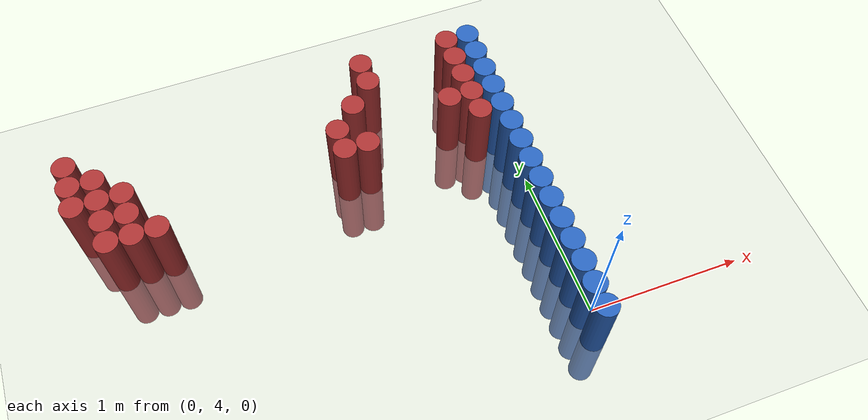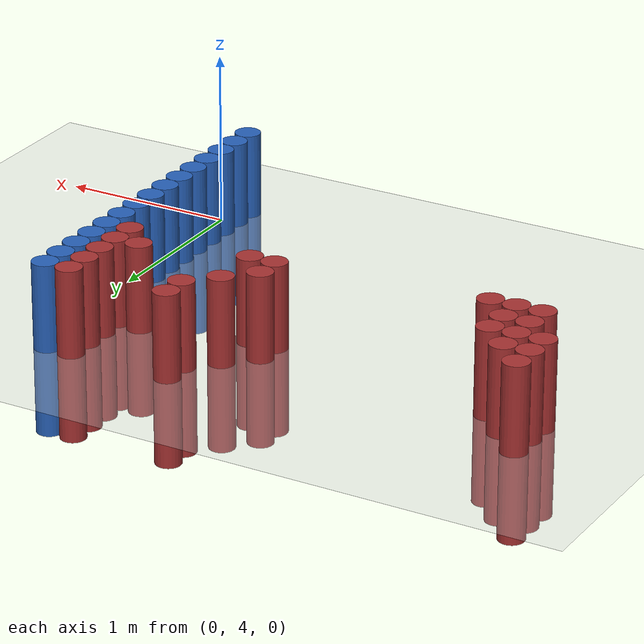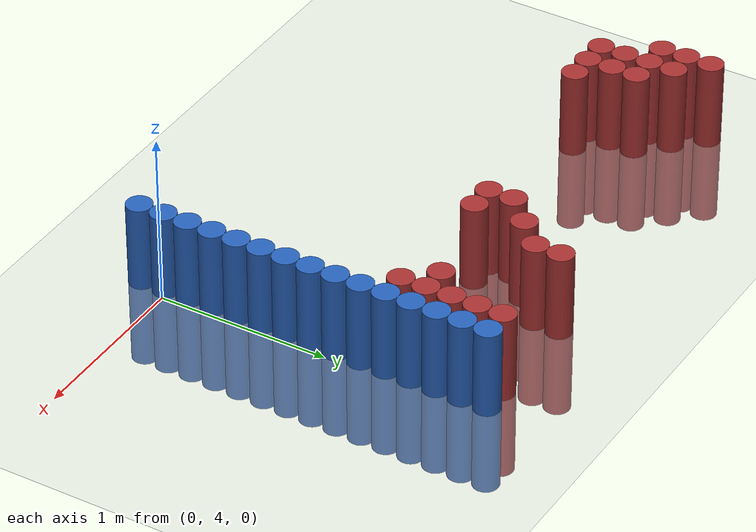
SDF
<sdf version="1.6">
 <world name="default">
  <model name="ground_plane">
   <static>1</static>
   <link name="link">
    <collision name="collision">
     <geometry><plane><normal>0 0 1</normal><size>100 100</size></plane></geometry>
     <surface><friction><ode><mu>100</mu><mu2>50</mu2></ode></friction></surface>
    </collision>
    <visual name="visual">
     <cast_shadows>0</cast_shadows>
     <geometry><plane><normal>0 0 1</normal><size>100 100</size></plane></geometry>
     <material>
      <script><uri>file://media/materials/scripts/gazebo.material</uri><name>Gazebo/Grey</name></script>
     </material>
    </visual>
   </link>
  </model>
  <model name="unit_cylinder_78">
   <static>1</static>
   <pose>-0.075000 3.825000 0.000000 0.000000 0.000000 0.000000</pose>
   <link name="link">
    <inertial>
     <mass>1</mass>
     <inertia><ixx>0.145833</ixx><ixy>0</ixy><ixz>0</ixz><iyy>0.145833</iyy><iyz>0</iyz><izz>0.125</izz></inertia>
    </inertial>
    <collision name="collision">
     <geometry><cylinder><radius>0.075000</radius><length>1</length></cylinder></geometry>
    </collision>
    <visual name="visual">
     <geometry><cylinder><radius>0.075000</radius><length>1</length></cylinder></geometry>
     <material>
      <ambient>0.152000 0.379000 0.720000 1</ambient>
      <diffuse>0.152000 0.379000 0.720000 1</diffuse>
     </material>
     <material>
      <script><name>Gazebo/Grey</name><uri>file://media/materials/scripts/gazebo.material</uri></script>
     </material>
    </visual>
    <sensor name="sensor_contact" type="contact"><contact><collision>collision</collision></contact></sensor>
   </link>
   <plugin filename="gz-sim-touchplugin-system" name="gz::sim::systems::TouchPlugin">
    <target>robot</target>
    <namespace>robot</namespace>
    <time>0.001</time>
    <enabled>true</enabled>
   </plugin>
  </model>
  <model name="unit_cylinder_80">
   <static>1</static>
   <pose>-0.075000 3.975000 0.000000 0.000000 0.000000 0.000000</pose>
   <link name="link">
    <inertial>
     <mass>1</mass>
     <inertia><ixx>0.145833</ixx><ixy>0</ixy><ixz>0</ixz><iyy>0.145833</iyy><iyz>0</iyz><izz>0.125</izz></inertia>
    </inertial>
    <collision name="collision">
     <geometry><cylinder><radius>0.075000</radius><length>1</length></cylinder></geometry>
    </collision>
    <visual name="visual">
     <geometry><cylinder><radius>0.075000</radius><length>1</length></cylinder></geometry>
     <material>
      <ambient>0.152000 0.379000 0.720000 1</ambient>
      <diffuse>0.152000 0.379000 0.720000 1</diffuse>
     </material>
     <material>
      <script><name>Gazebo/Grey</name><uri>file://media/materials/scripts/gazebo.material</uri></script>
     </material>
    </visual>
    <sensor name="sensor_contact" type="contact"><contact><collision>collision</collision></contact></sensor>
   </link>
   <plugin filename="gz-sim-touchplugin-system" name="gz::sim::systems::TouchPlugin">
    <target>robot</target>
    <namespace>robot</namespace>
    <time>0.001</time>
    <enabled>true</enabled>
   </plugin>
  </model>
  <model name="unit_cylinder_82">
   <static>1</static>
   <pose>-0.075000 4.125000 0.000000 0.000000 0.000000 0.000000</pose>
   <link name="link">
    <inertial>
     <mass>1</mass>
     <inertia><ixx>0.145833</ixx><ixy>0</ixy><ixz>0</ixz><iyy>0.145833</iyy><iyz>0</iyz><izz>0.125</izz></inertia>
    </inertial>
    <collision name="collision">
     <geometry><cylinder><radius>0.075000</radius><length>1</length></cylinder></geometry>
    </collision>
    <visual name="visual">
     <geometry><cylinder><radius>0.075000</radius><length>1</length></cylinder></geometry>
     <material>
      <ambient>0.152000 0.379000 0.720000 1</ambient>
      <diffuse>0.152000 0.379000 0.720000 1</diffuse>
     </material>
     <material>
      <script><name>Gazebo/Grey</name><uri>file://media/materials/scripts/gazebo.material</uri></script>
     </material>
    </visual>
    <sensor name="sensor_contact" type="contact"><contact><collision>collision</collision></contact></sensor>
   </link>
   <plugin filename="gz-sim-touchplugin-system" name="gz::sim::systems::TouchPlugin">
    <target>robot</target>
    <namespace>robot</namespace>
    <time>0.001</time>
    <enabled>true</enabled>
   </plugin>
  </model>
  <model name="unit_cylinder_84">
   <static>1</static>
   <pose>-0.075000 4.275000 0.000000 0.000000 0.000000 0.000000</pose>
   <link name="link">
    <inertial>
     <mass>1</mass>
     <inertia><ixx>0.145833</ixx><ixy>0</ixy><ixz>0</ixz><iyy>0.145833</iyy><iyz>0</iyz><izz>0.125</izz></inertia>
    </inertial>
    <collision name="collision">
     <geometry><cylinder><radius>0.075000</radius><length>1</length></cylinder></geometry>
    </collision>
    <visual name="visual">
     <geometry><cylinder><radius>0.075000</radius><length>1</length></cylinder></geometry>
     <material>
      <ambient>0.152000 0.379000 0.720000 1</ambient>
      <diffuse>0.152000 0.379000 0.720000 1</diffuse>
     </material>
     <material>
      <script><name>Gazebo/Grey</name><uri>file://media/materials/scripts/gazebo.material</uri></script>
     </material>
    </visual>
    <sensor name="sensor_contact" type="contact"><contact><collision>collision</collision></contact></sensor>
   </link>
   <plugin filename="gz-sim-touchplugin-system" name="gz::sim::systems::TouchPlugin">
    <target>robot</target>
    <namespace>robot</namespace>
    <time>0.001</time>
    <enabled>true</enabled>
   </plugin>
  </model>
  <model name="unit_cylinder_86">
   <static>1</static>
   <pose>-0.075000 4.425000 0.000000 0.000000 0.000000 0.000000</pose>
   <link name="link">
    <inertial>
     <mass>1</mass>
     <inertia><ixx>0.145833</ixx><ixy>0</ixy><ixz>0</ixz><iyy>0.145833</iyy><iyz>0</iyz><izz>0.125</izz></inertia>
    </inertial>
    <collision name="collision">
     <geometry><cylinder><radius>0.075000</radius><length>1</length></cylinder></geometry>
    </collision>
    <visual name="visual">
     <geometry><cylinder><radius>0.075000</radius><length>1</length></cylinder></geometry>
     <material>
      <ambient>0.152000 0.379000 0.720000 1</ambient>
      <diffuse>0.152000 0.379000 0.720000 1</diffuse>
     </material>
     <material>
      <script><name>Gazebo/Grey</name><uri>file://media/materials/scripts/gazebo.material</uri></script>
     </material>
    </visual>
    <sensor name="sensor_contact" type="contact"><contact><collision>collision</collision></contact></sensor>
   </link>
   <plugin filename="gz-sim-touchplugin-system" name="gz::sim::systems::TouchPlugin">
    <target>robot</target>
    <namespace>robot</namespace>
    <time>0.001</time>
    <enabled>true</enabled>
   </plugin>
  </model>
  <model name="unit_cylinder_88">
   <static>1</static>
   <pose>-0.075000 4.575000 0.000000 0.000000 0.000000 0.000000</pose>
   <link name="link">
    <inertial>
     <mass>1</mass>
     <inertia><ixx>0.145833</ixx><ixy>0</ixy><ixz>0</ixz><iyy>0.145833</iyy><iyz>0</iyz><izz>0.125</izz></inertia>
    </inertial>
    <collision name="collision">
     <geometry><cylinder><radius>0.075000</radius><length>1</length></cylinder></geometry>
    </collision>
    <visual name="visual">
     <geometry><cylinder><radius>0.075000</radius><length>1</length></cylinder></geometry>
     <material>
      <ambient>0.152000 0.379000 0.720000 1</ambient>
      <diffuse>0.152000 0.379000 0.720000 1</diffuse>
     </material>
     <material>
      <script><name>Gazebo/Grey</name><uri>file://media/materials/scripts/gazebo.material</uri></script>
     </material>
    </visual>
    <sensor name="sensor_contact" type="contact"><contact><collision>collision</collision></contact></sensor>
   </link>
   <plugin filename="gz-sim-touchplugin-system" name="gz::sim::systems::TouchPlugin">
    <target>robot</target>
    <namespace>robot</namespace>
    <time>0.001</time>
    <enabled>true</enabled>
   </plugin>
  </model>
  <model name="unit_cylinder_90">
   <static>1</static>
   <pose>-0.075000 4.725000 0.000000 0.000000 0.000000 0.000000</pose>
   <link name="link">
    <inertial>
     <mass>1</mass>
     <inertia><ixx>0.145833</ixx><ixy>0</ixy><ixz>0</ixz><iyy>0.145833</iyy><iyz>0</iyz><izz>0.125</izz></inertia>
    </inertial>
    <collision name="collision">
     <geometry><cylinder><radius>0.075000</radius><length>1</length></cylinder></geometry>
    </collision>
    <visual name="visual">
     <geometry><cylinder><radius>0.075000</radius><length>1</length></cylinder></geometry>
     <material>
      <ambient>0.152000 0.379000 0.720000 1</ambient>
      <diffuse>0.152000 0.379000 0.720000 1</diffuse>
     </material>
     <material>
      <script><name>Gazebo/Grey</name><uri>file://media/materials/scripts/gazebo.material</uri></script>
     </material>
    </visual>
    <sensor name="sensor_contact" type="contact"><contact><collision>collision</collision></contact></sensor>
   </link>
   <plugin filename="gz-sim-touchplugin-system" name="gz::sim::systems::TouchPlugin">
    <target>robot</target>
    <namespace>robot</namespace>
    <time>0.001</time>
    <enabled>true</enabled>
   </plugin>
  </model>
  <model name="unit_cylinder_92">
   <static>1</static>
   <pose>-0.075000 4.875000 0.000000 0.000000 0.000000 0.000000</pose>
   <link name="link">
    <inertial>
     <mass>1</mass>
     <inertia><ixx>0.145833</ixx><ixy>0</ixy><ixz>0</ixz><iyy>0.145833</iyy><iyz>0</iyz><izz>0.125</izz></inertia>
    </inertial>
    <collision name="collision">
     <geometry><cylinder><radius>0.075000</radius><length>1</length></cylinder></geometry>
    </collision>
    <visual name="visual">
     <geometry><cylinder><radius>0.075000</radius><length>1</length></cylinder></geometry>
     <material>
      <ambient>0.152000 0.379000 0.720000 1</ambient>
      <diffuse>0.152000 0.379000 0.720000 1</diffuse>
     </material>
     <material>
      <script><name>Gazebo/Grey</name><uri>file://media/materials/scripts/gazebo.material</uri></script>
     </material>
    </visual>
    <sensor name="sensor_contact" type="contact"><contact><collision>collision</collision></contact></sensor>
   </link>
   <plugin filename="gz-sim-touchplugin-system" name="gz::sim::systems::TouchPlugin">
    <target>robot</target>
    <namespace>robot</namespace>
    <time>0.001</time>
    <enabled>true</enabled>
   </plugin>
  </model>
  <model name="unit_cylinder_94">
   <static>1</static>
   <pose>-0.075000 5.025000 0.000000 0.000000 0.000000 0.000000</pose>
   <link name="link">
    <inertial>
     <mass>1</mass>
     <inertia><ixx>0.145833</ixx><ixy>0</ixy><ixz>0</ixz><iyy>0.145833</iyy><iyz>0</iyz><izz>0.125</izz></inertia>
    </inertial>
    <collision name="collision">
     <geometry><cylinder><radius>0.075000</radius><length>1</length></cylinder></geometry>
    </collision>
    <visual name="visual">
     <geometry><cylinder><radius>0.075000</radius><length>1</length></cylinder></geometry>
     <material>
      <ambient>0.152000 0.379000 0.720000 1</ambient>
      <diffuse>0.152000 0.379000 0.720000 1</diffuse>
     </material>
     <material>
      <script><name>Gazebo/Grey</name><uri>file://media/materials/scripts/gazebo.material</uri></script>
     </material>
    </visual>
    <sensor name="sensor_contact" type="contact"><contact><collision>collision</collision></contact></sensor>
   </link>
   <plugin filename="gz-sim-touchplugin-system" name="gz::sim::systems::TouchPlugin">
    <target>robot</target>
    <namespace>robot</namespace>
    <time>0.001</time>
    <enabled>true</enabled>
   </plugin>
  </model>
  <model name="unit_cylinder_215">
   <static>1</static>
   <pose>-2.775000 5.475000 0.000000 0.000000 0.000000 0.000000</pose>
   <link name="link">
    <inertial>
     <mass>1</mass>
     <inertia><ixx>0.145833</ixx><ixy>0</ixy><ixz>0</ixz><iyy>0.145833</iyy><iyz>0</iyz><izz>0.125</izz></inertia>
    </inertial>
    <collision name="collision">
     <geometry><cylinder><radius>0.075000</radius><length>1</length></cylinder></geometry>
    </collision>
    <visual name="visual">
     <geometry><cylinder><radius>0.075000</radius><length>1</length></cylinder></geometry>
     <material>
      <ambient>0.648000 0.192000 0.192000 1</ambient>
      <diffuse>0.648000 0.192000 0.192000 1</diffuse>
     </material>
     <material>
      <script><name>Gazebo/Grey</name><uri>file://media/materials/scripts/gazebo.material</uri></script>
     </material>
    </visual>
    <sensor name="sensor_contact" type="contact"><contact><collision>collision</collision></contact></sensor>
   </link>
   <plugin filename="gz-sim-touchplugin-system" name="gz::sim::systems::TouchPlugin">
    <target>robot</target>
    <namespace>robot</namespace>
    <time>0.001</time>
    <enabled>true</enabled>
   </plugin>
  </model>
  <model name="unit_cylinder_216">
   <static>1</static>
   <pose>-2.775000 5.625000 0.000000 0.000000 0.000000 0.000000</pose>
   <link name="link">
    <inertial>
     <mass>1</mass>
     <inertia><ixx>0.145833</ixx><ixy>0</ixy><ixz>0</ixz><iyy>0.145833</iyy><iyz>0</iyz><izz>0.125</izz></inertia>
    </inertial>
    <collision name="collision">
     <geometry><cylinder><radius>0.075000</radius><length>1</length></cylinder></geometry>
    </collision>
    <visual name="visual">
     <geometry><cylinder><radius>0.075000</radius><length>1</length></cylinder></geometry>
     <material>
      <ambient>0.648000 0.192000 0.192000 1</ambient>
      <diffuse>0.648000 0.192000 0.192000 1</diffuse>
     </material>
     <material>
      <script><name>Gazebo/Grey</name><uri>file://media/materials/scripts/gazebo.material</uri></script>
     </material>
    </visual>
    <sensor name="sensor_contact" type="contact"><contact><collision>collision</collision></contact></sensor>
   </link>
   <plugin filename="gz-sim-touchplugin-system" name="gz::sim::systems::TouchPlugin">
    <target>robot</target>
    <namespace>robot</namespace>
    <time>0.001</time>
    <enabled>true</enabled>
   </plugin>
  </model>
  <model name="unit_cylinder_217">
   <static>1</static>
   <pose>-2.775000 5.775000 0.000000 0.000000 0.000000 0.000000</pose>
   <link name="link">
    <inertial>
     <mass>1</mass>
     <inertia><ixx>0.145833</ixx><ixy>0</ixy><ixz>0</ixz><iyy>0.145833</iyy><iyz>0</iyz><izz>0.125</izz></inertia>
    </inertial>
    <collision name="collision">
     <geometry><cylinder><radius>0.075000</radius><length>1</length></cylinder></geometry>
    </collision>
    <visual name="visual">
     <geometry><cylinder><radius>0.075000</radius><length>1</length></cylinder></geometry>
     <material>
      <ambient>0.648000 0.192000 0.192000 1</ambient>
      <diffuse>0.648000 0.192000 0.192000 1</diffuse>
     </material>
     <material>
      <script><name>Gazebo/Grey</name><uri>file://media/materials/scripts/gazebo.material</uri></script>
     </material>
    </visual>
    <sensor name="sensor_contact" type="contact"><contact><collision>collision</collision></contact></sensor>
   </link>
   <plugin filename="gz-sim-touchplugin-system" name="gz::sim::systems::TouchPlugin">
    <target>robot</target>
    <namespace>robot</namespace>
    <time>0.001</time>
    <enabled>true</enabled>
   </plugin>
  </model>
  <model name="unit_cylinder_220">
   <static>1</static>
   <pose>-2.625000 5.175000 0.000000 0.000000 0.000000 0.000000</pose>
   <link name="link">
    <inertial>
     <mass>1</mass>
     <inertia><ixx>0.145833</ixx><ixy>0</ixy><ixz>0</ixz><iyy>0.145833</iyy><iyz>0</iyz><izz>0.125</izz></inertia>
    </inertial>
    <collision name="collision">
     <geometry><cylinder><radius>0.075000</radius><length>1</length></cylinder></geometry>
    </collision>
    <visual name="visual">
     <geometry><cylinder><radius>0.075000</radius><length>1</length></cylinder></geometry>
     <material>
      <ambient>0.648000 0.192000 0.192000 1</ambient>
      <diffuse>0.648000 0.192000 0.192000 1</diffuse>
     </material>
     <material>
      <script><name>Gazebo/Grey</name><uri>file://media/materials/scripts/gazebo.material</uri></script>
     </material>
    </visual>
    <sensor name="sensor_contact" type="contact"><contact><collision>collision</collision></contact></sensor>
   </link>
   <plugin filename="gz-sim-touchplugin-system" name="gz::sim::systems::TouchPlugin">
    <target>robot</target>
    <namespace>robot</namespace>
    <time>0.001</time>
    <enabled>true</enabled>
   </plugin>
  </model>
  <model name="unit_cylinder_221">
   <static>1</static>
   <pose>-2.625000 5.325000 0.000000 0.000000 0.000000 0.000000</pose>
   <link name="link">
    <inertial>
     <mass>1</mass>
     <inertia><ixx>0.145833</ixx><ixy>0</ixy><ixz>0</ixz><iyy>0.145833</iyy><iyz>0</iyz><izz>0.125</izz></inertia>
    </inertial>
    <collision name="collision">
     <geometry><cylinder><radius>0.075000</radius><length>1</length></cylinder></geometry>
    </collision>
    <visual name="visual">
     <geometry><cylinder><radius>0.075000</radius><length>1</length></cylinder></geometry>
     <material>
      <ambient>0.648000 0.192000 0.192000 1</ambient>
      <diffuse>0.648000 0.192000 0.192000 1</diffuse>
     </material>
     <material>
      <script><name>Gazebo/Grey</name><uri>file://media/materials/scripts/gazebo.material</uri></script>
     </material>
    </visual>
    <sensor name="sensor_contact" type="contact"><contact><collision>collision</collision></contact></sensor>
   </link>
   <plugin filename="gz-sim-touchplugin-system" name="gz::sim::systems::TouchPlugin">
    <target>robot</target>
    <namespace>robot</namespace>
    <time>0.001</time>
    <enabled>true</enabled>
   </plugin>
  </model>
  <model name="unit_cylinder_222">
   <static>1</static>
   <pose>-2.625000 5.475000 0.000000 0.000000 0.000000 0.000000</pose>
   <link name="link">
    <inertial>
     <mass>1</mass>
     <inertia><ixx>0.145833</ixx><ixy>0</ixy><ixz>0</ixz><iyy>0.145833</iyy><iyz>0</iyz><izz>0.125</izz></inertia>
    </inertial>
    <collision name="collision">
     <geometry><cylinder><radius>0.075000</radius><length>1</length></cylinder></geometry>
    </collision>
    <visual name="visual">
     <geometry><cylinder><radius>0.075000</radius><length>1</length></cylinder></geometry>
     <material>
      <ambient>0.648000 0.192000 0.192000 1</ambient>
      <diffuse>0.648000 0.192000 0.192000 1</diffuse>
     </material>
     <material>
      <script><name>Gazebo/Grey</name><uri>file://media/materials/scripts/gazebo.material</uri></script>
     </material>
    </visual>
    <sensor name="sensor_contact" type="contact"><contact><collision>collision</collision></contact></sensor>
   </link>
   <plugin filename="gz-sim-touchplugin-system" name="gz::sim::systems::TouchPlugin">
    <target>robot</target>
    <namespace>robot</namespace>
    <time>0.001</time>
    <enabled>true</enabled>
   </plugin>
  </model>
  <model name="unit_cylinder_223">
   <static>1</static>
   <pose>-2.625000 5.625000 0.000000 0.000000 0.000000 0.000000</pose>
   <link name="link">
    <inertial>
     <mass>1</mass>
     <inertia><ixx>0.145833</ixx><ixy>0</ixy><ixz>0</ixz><iyy>0.145833</iyy><iyz>0</iyz><izz>0.125</izz></inertia>
    </inertial>
    <collision name="collision">
     <geometry><cylinder><radius>0.075000</radius><length>1</length></cylinder></geometry>
    </collision>
    <visual name="visual">
     <geometry><cylinder><radius>0.075000</radius><length>1</length></cylinder></geometry>
     <material>
      <ambient>0.648000 0.192000 0.192000 1</ambient>
      <diffuse>0.648000 0.192000 0.192000 1</diffuse>
     </material>
     <material>
      <script><name>Gazebo/Grey</name><uri>file://media/materials/scripts/gazebo.material</uri></script>
     </material>
    </visual>
    <sensor name="sensor_contact" type="contact"><contact><collision>collision</collision></contact></sensor>
   </link>
   <plugin filename="gz-sim-touchplugin-system" name="gz::sim::systems::TouchPlugin">
    <target>robot</target>
    <namespace>robot</namespace>
    <time>0.001</time>
    <enabled>true</enabled>
   </plugin>
  </model>
  <model name="unit_cylinder_225">
   <static>1</static>
   <pose>-2.475000 5.175000 0.000000 0.000000 0.000000 0.000000</pose>
   <link name="link">
    <inertial>
     <mass>1</mass>
     <inertia><ixx>0.145833</ixx><ixy>0</ixy><ixz>0</ixz><iyy>0.145833</iyy><iyz>0</iyz><izz>0.125</izz></inertia>
    </inertial>
    <collision name="collision">
     <geometry><cylinder><radius>0.075000</radius><length>1</length></cylinder></geometry>
    </collision>
    <visual name="visual">
     <geometry><cylinder><radius>0.075000</radius><length>1</length></cylinder></geometry>
     <material>
      <ambient>0.648000 0.192000 0.192000 1</ambient>
      <diffuse>0.648000 0.192000 0.192000 1</diffuse>
     </material>
     <material>
      <script><name>Gazebo/Grey</name><uri>file://media/materials/scripts/gazebo.material</uri></script>
     </material>
    </visual>
    <sensor name="sensor_contact" type="contact"><contact><collision>collision</collision></contact></sensor>
   </link>
   <plugin filename="gz-sim-touchplugin-system" name="gz::sim::systems::TouchPlugin">
    <target>robot</target>
    <namespace>robot</namespace>
    <time>0.001</time>
    <enabled>true</enabled>
   </plugin>
  </model>
  <model name="unit_cylinder_226">
   <static>1</static>
   <pose>-2.475000 5.325000 0.000000 0.000000 0.000000 0.000000</pose>
   <link name="link">
    <inertial>
     <mass>1</mass>
     <inertia><ixx>0.145833</ixx><ixy>0</ixy><ixz>0</ixz><iyy>0.145833</iyy><iyz>0</iyz><izz>0.125</izz></inertia>
    </inertial>
    <collision name="collision">
     <geometry><cylinder><radius>0.075000</radius><length>1</length></cylinder></geometry>
    </collision>
    <visual name="visual">
     <geometry><cylinder><radius>0.075000</radius><length>1</length></cylinder></geometry>
     <material>
      <ambient>0.648000 0.192000 0.192000 1</ambient>
      <diffuse>0.648000 0.192000 0.192000 1</diffuse>
     </material>
     <material>
      <script><name>Gazebo/Grey</name><uri>file://media/materials/scripts/gazebo.material</uri></script>
     </material>
    </visual>
    <sensor name="sensor_contact" type="contact"><contact><collision>collision</collision></contact></sensor>
   </link>
   <plugin filename="gz-sim-touchplugin-system" name="gz::sim::systems::TouchPlugin">
    <target>robot</target>
    <namespace>robot</namespace>
    <time>0.001</time>
    <enabled>true</enabled>
   </plugin>
  </model>
  <model name="unit_cylinder_227">
   <static>1</static>
   <pose>-2.475000 5.475000 0.000000 0.000000 0.000000 0.000000</pose>
   <link name="link">
    <inertial>
     <mass>1</mass>
     <inertia><ixx>0.145833</ixx><ixy>0</ixy><ixz>0</ixz><iyy>0.145833</iyy><iyz>0</iyz><izz>0.125</izz></inertia>
    </inertial>
    <collision name="collision">
     <geometry><cylinder><radius>0.075000</radius><length>1</length></cylinder></geometry>
    </collision>
    <visual name="visual">
     <geometry><cylinder><radius>0.075000</radius><length>1</length></cylinder></geometry>
     <material>
      <ambient>0.648000 0.192000 0.192000 1</ambient>
      <diffuse>0.648000 0.192000 0.192000 1</diffuse>
     </material>
     <material>
      <script><name>Gazebo/Grey</name><uri>file://media/materials/scripts/gazebo.material</uri></script>
     </material>
    </visual>
    <sensor name="sensor_contact" type="contact"><contact><collision>collision</collision></contact></sensor>
   </link>
   <plugin filename="gz-sim-touchplugin-system" name="gz::sim::systems::TouchPlugin">
    <target>robot</target>
    <namespace>robot</namespace>
    <time>0.001</time>
    <enabled>true</enabled>
   </plugin>
  </model>
  <model name="unit_cylinder_228">
   <static>1</static>
   <pose>-2.325000 5.175000 0.000000 0.000000 0.000000 0.000000</pose>
   <link name="link">
    <inertial>
     <mass>1</mass>
     <inertia><ixx>0.145833</ixx><ixy>0</ixy><ixz>0</ixz><iyy>0.145833</iyy><iyz>0</iyz><izz>0.125</izz></inertia>
    </inertial>
    <collision name="collision">
     <geometry><cylinder><radius>0.075000</radius><length>1</length></cylinder></geometry>
    </collision>
    <visual name="visual">
     <geometry><cylinder><radius>0.075000</radius><length>1</length></cylinder></geometry>
     <material>
      <ambient>0.648000 0.192000 0.192000 1</ambient>
      <diffuse>0.648000 0.192000 0.192000 1</diffuse>
     </material>
     <material>
      <script><name>Gazebo/Grey</name><uri>file://media/materials/scripts/gazebo.material</uri></script>
     </material>
    </visual>
    <sensor name="sensor_contact" type="contact"><contact><collision>collision</collision></contact></sensor>
   </link>
   <plugin filename="gz-sim-touchplugin-system" name="gz::sim::systems::TouchPlugin">
    <target>robot</target>
    <namespace>robot</namespace>
    <time>0.001</time>
    <enabled>true</enabled>
   </plugin>
  </model>
  <model name="unit_cylinder_269">
   <static>1</static>
   <pose>-1.125000 5.325000 0.000000 0.000000 0.000000 0.000000</pose>
   <link name="link">
    <inertial>
     <mass>1</mass>
     <inertia><ixx>0.145833</ixx><ixy>0</ixy><ixz>0</ixz><iyy>0.145833</iyy><iyz>0</iyz><izz>0.125</izz></inertia>
    </inertial>
    <collision name="collision">
     <geometry><cylinder><radius>0.075000</radius><length>1</length></cylinder></geometry>
    </collision>
    <visual name="visual">
     <geometry><cylinder><radius>0.075000</radius><length>1</length></cylinder></geometry>
     <material>
      <ambient>0.648000 0.192000 0.192000 1</ambient>
      <diffuse>0.648000 0.192000 0.192000 1</diffuse>
     </material>
     <material>
      <script><name>Gazebo/Grey</name><uri>file://media/materials/scripts/gazebo.material</uri></script>
     </material>
    </visual>
    <sensor name="sensor_contact" type="contact"><contact><collision>collision</collision></contact></sensor>
   </link>
   <plugin filename="gz-sim-touchplugin-system" name="gz::sim::systems::TouchPlugin">
    <target>robot</target>
    <namespace>robot</namespace>
    <time>0.001</time>
    <enabled>true</enabled>
   </plugin>
  </model>
  <model name="unit_cylinder_270">
   <static>1</static>
   <pose>-1.125000 5.475000 0.000000 0.000000 0.000000 0.000000</pose>
   <link name="link">
    <inertial>
     <mass>1</mass>
     <inertia><ixx>0.145833</ixx><ixy>0</ixy><ixz>0</ixz><iyy>0.145833</iyy><iyz>0</iyz><izz>0.125</izz></inertia>
    </inertial>
    <collision name="collision">
     <geometry><cylinder><radius>0.075000</radius><length>1</length></cylinder></geometry>
    </collision>
    <visual name="visual">
     <geometry><cylinder><radius>0.075000</radius><length>1</length></cylinder></geometry>
     <material>
      <ambient>0.648000 0.192000 0.192000 1</ambient>
      <diffuse>0.648000 0.192000 0.192000 1</diffuse>
     </material>
     <material>
      <script><name>Gazebo/Grey</name><uri>file://media/materials/scripts/gazebo.material</uri></script>
     </material>
    </visual>
    <sensor name="sensor_contact" type="contact"><contact><collision>collision</collision></contact></sensor>
   </link>
   <plugin filename="gz-sim-touchplugin-system" name="gz::sim::systems::TouchPlugin">
    <target>robot</target>
    <namespace>robot</namespace>
    <time>0.001</time>
    <enabled>true</enabled>
   </plugin>
  </model>
  <model name="unit_cylinder_274">
   <static>1</static>
   <pose>-0.975000 5.325000 0.000000 0.000000 0.000000 0.000000</pose>
   <link name="link">
    <inertial>
     <mass>1</mass>
     <inertia><ixx>0.145833</ixx><ixy>0</ixy><ixz>0</ixz><iyy>0.145833</iyy><iyz>0</iyz><izz>0.125</izz></inertia>
    </inertial>
    <collision name="collision">
     <geometry><cylinder><radius>0.075000</radius><length>1</length></cylinder></geometry>
    </collision>
    <visual name="visual">
     <geometry><cylinder><radius>0.075000</radius><length>1</length></cylinder></geometry>
     <material>
      <ambient>0.648000 0.192000 0.192000 1</ambient>
      <diffuse>0.648000 0.192000 0.192000 1</diffuse>
     </material>
     <material>
      <script><name>Gazebo/Grey</name><uri>file://media/materials/scripts/gazebo.material</uri></script>
     </material>
    </visual>
    <sensor name="sensor_contact" type="contact"><contact><collision>collision</collision></contact></sensor>
   </link>
   <plugin filename="gz-sim-touchplugin-system" name="gz::sim::systems::TouchPlugin">
    <target>robot</target>
    <namespace>robot</namespace>
    <time>0.001</time>
    <enabled>true</enabled>
   </plugin>
  </model>
  <model name="unit_cylinder_275">
   <static>1</static>
   <pose>-0.975000 5.625000 0.000000 0.000000 0.000000 0.000000</pose>
   <link name="link">
    <inertial>
     <mass>1</mass>
     <inertia><ixx>0.145833</ixx><ixy>0</ixy><ixz>0</ixz><iyy>0.145833</iyy><iyz>0</iyz><izz>0.125</izz></inertia>
    </inertial>
    <collision name="collision">
     <geometry><cylinder><radius>0.075000</radius><length>1</length></cylinder></geometry>
    </collision>
    <visual name="visual">
     <geometry><cylinder><radius>0.075000</radius><length>1</length></cylinder></geometry>
     <material>
      <ambient>0.648000 0.192000 0.192000 1</ambient>
      <diffuse>0.648000 0.192000 0.192000 1</diffuse>
     </material>
     <material>
      <script><name>Gazebo/Grey</name><uri>file://media/materials/scripts/gazebo.material</uri></script>
     </material>
    </visual>
    <sensor name="sensor_contact" type="contact"><contact><collision>collision</collision></contact></sensor>
   </link>
   <plugin filename="gz-sim-touchplugin-system" name="gz::sim::systems::TouchPlugin">
    <target>robot</target>
    <namespace>robot</namespace>
    <time>0.001</time>
    <enabled>true</enabled>
   </plugin>
  </model>
  <model name="unit_cylinder_278">
   <static>1</static>
   <pose>-0.825000 5.775000 0.000000 0.000000 0.000000 0.000000</pose>
   <link name="link">
    <inertial>
     <mass>1</mass>
     <inertia><ixx>0.145833</ixx><ixy>0</ixy><ixz>0</ixz><iyy>0.145833</iyy><iyz>0</iyz><izz>0.125</izz></inertia>
    </inertial>
    <collision name="collision">
     <geometry><cylinder><radius>0.075000</radius><length>1</length></cylinder></geometry>
    </collision>
    <visual name="visual">
     <geometry><cylinder><radius>0.075000</radius><length>1</length></cylinder></geometry>
     <material>
      <ambient>0.648000 0.192000 0.192000 1</ambient>
      <diffuse>0.648000 0.192000 0.192000 1</diffuse>
     </material>
     <material>
      <script><name>Gazebo/Grey</name><uri>file://media/materials/scripts/gazebo.material</uri></script>
     </material>
    </visual>
    <sensor name="sensor_contact" type="contact"><contact><collision>collision</collision></contact></sensor>
   </link>
   <plugin filename="gz-sim-touchplugin-system" name="gz::sim::systems::TouchPlugin">
    <target>robot</target>
    <namespace>robot</namespace>
    <time>0.001</time>
    <enabled>true</enabled>
   </plugin>
  </model>
  <model name="unit_cylinder_279">
   <static>1</static>
   <pose>-0.825000 5.925000 0.000000 0.000000 0.000000 0.000000</pose>
   <link name="link">
    <inertial>
     <mass>1</mass>
     <inertia><ixx>0.145833</ixx><ixy>0</ixy><ixz>0</ixz><iyy>0.145833</iyy><iyz>0</iyz><izz>0.125</izz></inertia>
    </inertial>
    <collision name="collision">
     <geometry><cylinder><radius>0.075000</radius><length>1</length></cylinder></geometry>
    </collision>
    <visual name="visual">
     <geometry><cylinder><radius>0.075000</radius><length>1</length></cylinder></geometry>
     <material>
      <ambient>0.648000 0.192000 0.192000 1</ambient>
      <diffuse>0.648000 0.192000 0.192000 1</diffuse>
     </material>
     <material>
      <script><name>Gazebo/Grey</name><uri>file://media/materials/scripts/gazebo.material</uri></script>
     </material>
    </visual>
    <sensor name="sensor_contact" type="contact"><contact><collision>collision</collision></contact></sensor>
   </link>
   <plugin filename="gz-sim-touchplugin-system" name="gz::sim::systems::TouchPlugin">
    <target>robot</target>
    <namespace>robot</namespace>
    <time>0.001</time>
    <enabled>true</enabled>
   </plugin>
  </model>
  <model name="unit_cylinder_291">
   <static>1</static>
   <pose>-0.375000 5.475000 0.000000 0.000000 0.000000 0.000000</pose>
   <link name="link">
    <inertial>
     <mass>1</mass>
     <inertia><ixx>0.145833</ixx><ixy>0</ixy><ixz>0</ixz><iyy>0.145833</iyy><iyz>0</iyz><izz>0.125</izz></inertia>
    </inertial>
    <collision name="collision">
     <geometry><cylinder><radius>0.075000</radius><length>1</length></cylinder></geometry>
    </collision>
    <visual name="visual">
     <geometry><cylinder><radius>0.075000</radius><length>1</length></cylinder></geometry>
     <material>
      <ambient>0.648000 0.192000 0.192000 1</ambient>
      <diffuse>0.648000 0.192000 0.192000 1</diffuse>
     </material>
     <material>
      <script><name>Gazebo/Grey</name><uri>file://media/materials/scripts/gazebo.material</uri></script>
     </material>
    </visual>
    <sensor name="sensor_contact" type="contact"><contact><collision>collision</collision></contact></sensor>
   </link>
   <plugin filename="gz-sim-touchplugin-system" name="gz::sim::systems::TouchPlugin">
    <target>robot</target>
    <namespace>robot</namespace>
    <time>0.001</time>
    <enabled>true</enabled>
   </plugin>
  </model>
  <model name="unit_cylinder_296">
   <static>1</static>
   <pose>-0.225000 5.325000 0.000000 0.000000 0.000000 0.000000</pose>
   <link name="link">
    <inertial>
     <mass>1</mass>
     <inertia><ixx>0.145833</ixx><ixy>0</ixy><ixz>0</ixz><iyy>0.145833</iyy><iyz>0</iyz><izz>0.125</izz></inertia>
    </inertial>
    <collision name="collision">
     <geometry><cylinder><radius>0.075000</radius><length>1</length></cylinder></geometry>
    </collision>
    <visual name="visual">
     <geometry><cylinder><radius>0.075000</radius><length>1</length></cylinder></geometry>
     <material>
      <ambient>0.648000 0.192000 0.192000 1</ambient>
      <diffuse>0.648000 0.192000 0.192000 1</diffuse>
     </material>
     <material>
      <script><name>Gazebo/Grey</name><uri>file://media/materials/scripts/gazebo.material</uri></script>
     </material>
    </visual>
    <sensor name="sensor_contact" type="contact"><contact><collision>collision</collision></contact></sensor>
   </link>
   <plugin filename="gz-sim-touchplugin-system" name="gz::sim::systems::TouchPlugin">
    <target>robot</target>
    <namespace>robot</namespace>
    <time>0.001</time>
    <enabled>true</enabled>
   </plugin>
  </model>
  <model name="unit_cylinder_297">
   <static>1</static>
   <pose>-0.225000 5.475000 0.000000 0.000000 0.000000 0.000000</pose>
   <link name="link">
    <inertial>
     <mass>1</mass>
     <inertia><ixx>0.145833</ixx><ixy>0</ixy><ixz>0</ixz><iyy>0.145833</iyy><iyz>0</iyz><izz>0.125</izz></inertia>
    </inertial>
    <collision name="collision">
     <geometry><cylinder><radius>0.075000</radius><length>1</length></cylinder></geometry>
    </collision>
    <visual name="visual">
     <geometry><cylinder><radius>0.075000</radius><length>1</length></cylinder></geometry>
     <material>
      <ambient>0.648000 0.192000 0.192000 1</ambient>
      <diffuse>0.648000 0.192000 0.192000 1</diffuse>
     </material>
     <material>
      <script><name>Gazebo/Grey</name><uri>file://media/materials/scripts/gazebo.material</uri></script>
     </material>
    </visual>
    <sensor name="sensor_contact" type="contact"><contact><collision>collision</collision></contact></sensor>
   </link>
   <plugin filename="gz-sim-touchplugin-system" name="gz::sim::systems::TouchPlugin">
    <target>robot</target>
    <namespace>robot</namespace>
    <time>0.001</time>
    <enabled>true</enabled>
   </plugin>
  </model>
  <model name="unit_cylinder_298">
   <static>1</static>
   <pose>-0.225000 5.625000 0.000000 0.000000 0.000000 0.000000</pose>
   <link name="link">
    <inertial>
     <mass>1</mass>
     <inertia><ixx>0.145833</ixx><ixy>0</ixy><ixz>0</ixz><iyy>0.145833</iyy><iyz>0</iyz><izz>0.125</izz></inertia>
    </inertial>
    <collision name="collision">
     <geometry><cylinder><radius>0.075000</radius><length>1</length></cylinder></geometry>
    </collision>
    <visual name="visual">
     <geometry><cylinder><radius>0.075000</radius><length>1</length></cylinder></geometry>
     <material>
      <ambient>0.648000 0.192000 0.192000 1</ambient>
      <diffuse>0.648000 0.192000 0.192000 1</diffuse>
     </material>
     <material>
      <script><name>Gazebo/Grey</name><uri>file://media/materials/scripts/gazebo.material</uri></script>
     </material>
    </visual>
    <sensor name="sensor_contact" type="contact"><contact><collision>collision</collision></contact></sensor>
   </link>
   <plugin filename="gz-sim-touchplugin-system" name="gz::sim::systems::TouchPlugin">
    <target>robot</target>
    <namespace>robot</namespace>
    <time>0.001</time>
    <enabled>true</enabled>
   </plugin>
  </model>
  <model name="unit_cylinder_299">
   <static>1</static>
   <pose>-0.225000 5.775000 0.000000 0.000000 0.000000 0.000000</pose>
   <link name="link">
    <inertial>
     <mass>1</mass>
     <inertia><ixx>0.145833</ixx><ixy>0</ixy><ixz>0</ixz><iyy>0.145833</iyy><iyz>0</iyz><izz>0.125</izz></inertia>
    </inertial>
    <collision name="collision">
     <geometry><cylinder><radius>0.075000</radius><length>1</length></cylinder></geometry>
    </collision>
    <visual name="visual">
     <geometry><cylinder><radius>0.075000</radius><length>1</length></cylinder></geometry>
     <material>
      <ambient>0.648000 0.192000 0.192000 1</ambient>
      <diffuse>0.648000 0.192000 0.192000 1</diffuse>
     </material>
     <material>
      <script><name>Gazebo/Grey</name><uri>file://media/materials/scripts/gazebo.material</uri></script>
     </material>
    </visual>
    <sensor name="sensor_contact" type="contact"><contact><collision>collision</collision></contact></sensor>
   </link>
   <plugin filename="gz-sim-touchplugin-system" name="gz::sim::systems::TouchPlugin">
    <target>robot</target>
    <namespace>robot</namespace>
    <time>0.001</time>
    <enabled>true</enabled>
   </plugin>
  </model>
  <model name="unit_cylinder_300">
   <static>1</static>
   <pose>-0.225000 5.925000 0.000000 0.000000 0.000000 0.000000</pose>
   <link name="link">
    <inertial>
     <mass>1</mass>
     <inertia><ixx>0.145833</ixx><ixy>0</ixy><ixz>0</ixz><iyy>0.145833</iyy><iyz>0</iyz><izz>0.125</izz></inertia>
    </inertial>
    <collision name="collision">
     <geometry><cylinder><radius>0.075000</radius><length>1</length></cylinder></geometry>
    </collision>
    <visual name="visual">
     <geometry><cylinder><radius>0.075000</radius><length>1</length></cylinder></geometry>
     <material>
      <ambient>0.648000 0.192000 0.192000 1</ambient>
      <diffuse>0.648000 0.192000 0.192000 1</diffuse>
     </material>
     <material>
      <script><name>Gazebo/Grey</name><uri>file://media/materials/scripts/gazebo.material</uri></script>
     </material>
    </visual>
    <sensor name="sensor_contact" type="contact"><contact><collision>collision</collision></contact></sensor>
   </link>
   <plugin filename="gz-sim-touchplugin-system" name="gz::sim::systems::TouchPlugin">
    <target>robot</target>
    <namespace>robot</namespace>
    <time>0.001</time>
    <enabled>true</enabled>
   </plugin>
  </model>
  <model name="unit_cylinder_316">
   <static>1</static>
   <pose>-0.075000 5.175000 0.000000 0.000000 0.000000 0.000000</pose>
   <link name="link">
    <inertial>
     <mass>1</mass>
     <inertia><ixx>0.145833</ixx><ixy>0</ixy><ixz>0</ixz><iyy>0.145833</iyy><iyz>0</iyz><izz>0.125</izz></inertia>
    </inertial>
    <collision name="collision">
     <geometry><cylinder><radius>0.075000</radius><length>1</length></cylinder></geometry>
    </collision>
    <visual name="visual">
     <geometry><cylinder><radius>0.075000</radius><length>1</length></cylinder></geometry>
     <material>
      <ambient>0.152000 0.379000 0.720000 1</ambient>
      <diffuse>0.152000 0.379000 0.720000 1</diffuse>
     </material>
     <material>
      <script><name>Gazebo/Grey</name><uri>file://media/materials/scripts/gazebo.material</uri></script>
     </material>
    </visual>
    <sensor name="sensor_contact" type="contact"><contact><collision>collision</collision></contact></sensor>
   </link>
   <plugin filename="gz-sim-touchplugin-system" name="gz::sim::systems::TouchPlugin">
    <target>robot</target>
    <namespace>robot</namespace>
    <time>0.001</time>
    <enabled>true</enabled>
   </plugin>
  </model>
  <model name="unit_cylinder_317">
   <static>1</static>
   <pose>-0.075000 5.325000 0.000000 0.000000 0.000000 0.000000</pose>
   <link name="link">
    <inertial>
     <mass>1</mass>
     <inertia><ixx>0.145833</ixx><ixy>0</ixy><ixz>0</ixz><iyy>0.145833</iyy><iyz>0</iyz><izz>0.125</izz></inertia>
    </inertial>
    <collision name="collision">
     <geometry><cylinder><radius>0.075000</radius><length>1</length></cylinder></geometry>
    </collision>
    <visual name="visual">
     <geometry><cylinder><radius>0.075000</radius><length>1</length></cylinder></geometry>
     <material>
      <ambient>0.152000 0.379000 0.720000 1</ambient>
      <diffuse>0.152000 0.379000 0.720000 1</diffuse>
     </material>
     <material>
      <script><name>Gazebo/Grey</name><uri>file://media/materials/scripts/gazebo.material</uri></script>
     </material>
    </visual>
    <sensor name="sensor_contact" type="contact"><contact><collision>collision</collision></contact></sensor>
   </link>
   <plugin filename="gz-sim-touchplugin-system" name="gz::sim::systems::TouchPlugin">
    <target>robot</target>
    <namespace>robot</namespace>
    <time>0.001</time>
    <enabled>true</enabled>
   </plugin>
  </model>
  <model name="unit_cylinder_318">
   <static>1</static>
   <pose>-0.075000 5.475000 0.000000 0.000000 0.000000 0.000000</pose>
   <link name="link">
    <inertial>
     <mass>1</mass>
     <inertia><ixx>0.145833</ixx><ixy>0</ixy><ixz>0</ixz><iyy>0.145833</iyy><iyz>0</iyz><izz>0.125</izz></inertia>
    </inertial>
    <collision name="collision">
     <geometry><cylinder><radius>0.075000</radius><length>1</length></cylinder></geometry>
    </collision>
    <visual name="visual">
     <geometry><cylinder><radius>0.075000</radius><length>1</length></cylinder></geometry>
     <material>
      <ambient>0.152000 0.379000 0.720000 1</ambient>
      <diffuse>0.152000 0.379000 0.720000 1</diffuse>
     </material>
     <material>
      <script><name>Gazebo/Grey</name><uri>file://media/materials/scripts/gazebo.material</uri></script>
     </material>
    </visual>
    <sensor name="sensor_contact" type="contact"><contact><collision>collision</collision></contact></sensor>
   </link>
   <plugin filename="gz-sim-touchplugin-system" name="gz::sim::systems::TouchPlugin">
    <target>robot</target>
    <namespace>robot</namespace>
    <time>0.001</time>
    <enabled>true</enabled>
   </plugin>
  </model>
  <model name="unit_cylinder_319">
   <static>1</static>
   <pose>-0.075000 5.625000 0.000000 0.000000 0.000000 0.000000</pose>
   <link name="link">
    <inertial>
     <mass>1</mass>
     <inertia><ixx>0.145833</ixx><ixy>0</ixy><ixz>0</ixz><iyy>0.145833</iyy><iyz>0</iyz><izz>0.125</izz></inertia>
    </inertial>
    <collision name="collision">
     <geometry><cylinder><radius>0.075000</radius><length>1</length></cylinder></geometry>
    </collision>
    <visual name="visual">
     <geometry><cylinder><radius>0.075000</radius><length>1</length></cylinder></geometry>
     <material>
      <ambient>0.152000 0.379000 0.720000 1</ambient>
      <diffuse>0.152000 0.379000 0.720000 1</diffuse>
     </material>
     <material>
      <script><name>Gazebo/Grey</name><uri>file://media/materials/scripts/gazebo.material</uri></script>
     </material>
    </visual>
    <sensor name="sensor_contact" type="contact"><contact><collision>collision</collision></contact></sensor>
   </link>
   <plugin filename="gz-sim-touchplugin-system" name="gz::sim::systems::TouchPlugin">
    <target>robot</target>
    <namespace>robot</namespace>
    <time>0.001</time>
    <enabled>true</enabled>
   </plugin>
  </model>
  <model name="unit_cylinder_320">
   <static>1</static>
   <pose>-0.075000 5.775000 0.000000 0.000000 0.000000 0.000000</pose>
   <link name="link">
    <inertial>
     <mass>1</mass>
     <inertia><ixx>0.145833</ixx><ixy>0</ixy><ixz>0</ixz><iyy>0.145833</iyy><iyz>0</iyz><izz>0.125</izz></inertia>
    </inertial>
    <collision name="collision">
     <geometry><cylinder><radius>0.075000</radius><length>1</length></cylinder></geometry>
    </collision>
    <visual name="visual">
     <geometry><cylinder><radius>0.075000</radius><length>1</length></cylinder></geometry>
     <material>
      <ambient>0.152000 0.379000 0.720000 1</ambient>
      <diffuse>0.152000 0.379000 0.720000 1</diffuse>
     </material>
     <material>
      <script><name>Gazebo/Grey</name><uri>file://media/materials/scripts/gazebo.material</uri></script>
     </material>
    </visual>
    <sensor name="sensor_contact" type="contact"><contact><collision>collision</collision></contact></sensor>
   </link>
   <plugin filename="gz-sim-touchplugin-system" name="gz::sim::systems::TouchPlugin">
    <target>robot</target>
    <namespace>robot</namespace>
    <time>0.001</time>
    <enabled>true</enabled>
   </plugin>
  </model>
  <model name="unit_cylinder_321">
   <static>1</static>
   <pose>-0.075000 5.925000 0.000000 0.000000 0.000000 0.000000</pose>
   <link name="link">
    <inertial>
     <mass>1</mass>
     <inertia><ixx>0.145833</ixx><ixy>0</ixy><ixz>0</ixz><iyy>0.145833</iyy><iyz>0</iyz><izz>0.125</izz></inertia>
    </inertial>
    <collision name="collision">
     <geometry><cylinder><radius>0.075000</radius><length>1</length></cylinder></geometry>
    </collision>
    <visual name="visual">
     <geometry><cylinder><radius>0.075000</radius><length>1</length></cylinder></geometry>
     <material>
      <ambient>0.152000 0.379000 0.720000 1</ambient>
      <diffuse>0.152000 0.379000 0.720000 1</diffuse>
     </material>
     <material>
      <script><name>Gazebo/Grey</name><uri>file://media/materials/scripts/gazebo.material</uri></script>
     </material>
    </visual>
    <sensor name="sensor_contact" type="contact"><contact><collision>collision</collision></contact></sensor>
   </link>
   <plugin filename="gz-sim-touchplugin-system" name="gz::sim::systems::TouchPlugin">
    <target>robot</target>
    <namespace>robot</namespace>
    <time>0.001</time>
    <enabled>true</enabled>
   </plugin>
  </model>
 </world>
</sdf>
